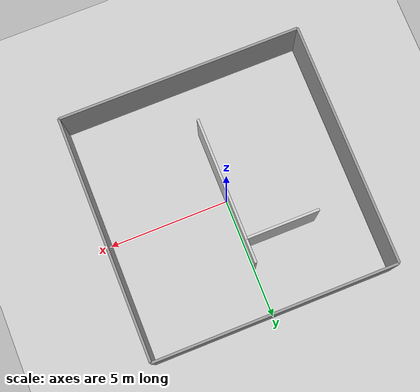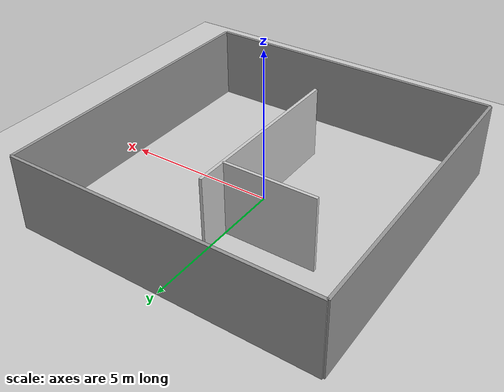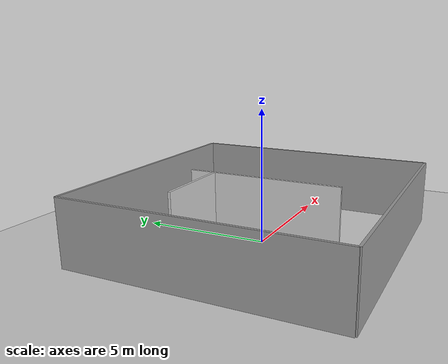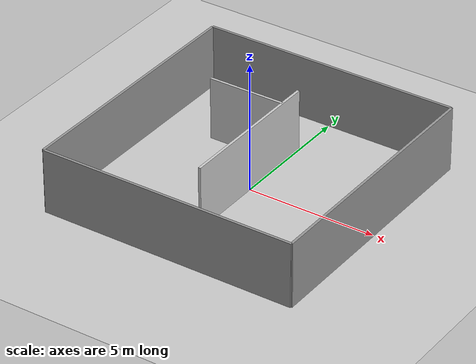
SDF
<?xml version="1.0" ?>
<sdf version="1.6">
  <world name="apartment">

    <!-- Sun & ground plane -->
    <include>
      <uri>model://sun</uri>
    </include>
    <include>
      <uri>model://ground_plane</uri>
    </include>

    <physics type="ode">
      <real_time_update_rate>1000.0</real_time_update_rate>
      <max_step_size>0.001</max_step_size>
    </physics>

    <!-- Floor -->
    <model name="apartment_floor">
      <static>true</static>
      <link name="floor">
        <collision name="floor_collision">
          <geometry>
            <box>
              <size>10 10 0.1</size>
            </box>
          </geometry>
          <surface>
            <contact>
              <collide_bitmask>0x01</collide_bitmask>
            </contact>
          </surface>
        </collision>
        <visual name="floor_visual">
          <geometry>
            <box>
              <size>10 10 0.1</size>
            </box>
          </geometry>
          <material>
            <ambient>0.8 0.8 0.8 1</ambient>
            <diffuse>0.8 0.8 0.8 1</diffuse>
          </material>
        </visual>
      </link>
    </model>

    <!-- Example walls for apartment -->
    <!-- Outer walls -->
    <model name="outer_wall_north">
      <static>true</static>
      <link name="link">
        <collision name="collision">
          <geometry><box><size>10 0.1 2.5</size></box></geometry>
        </collision>
        <visual name="visual">
          <geometry><box><size>10 0.1 2.5</size></box></geometry>
          <material><diffuse>0.6 0.6 0.6 1</diffuse></material>
        </visual>
        <pose>0 5 1.25 0 0 0</pose>
      </link>
    </model>

    <model name="outer_wall_south">
      <static>true</static>
      <link name="link">
        <collision name="collision">
          <geometry><box><size>10 0.1 2.5</size></box></geometry>
        </collision>
        <visual name="visual">
          <geometry><box><size>10 0.1 2.5</size></box></geometry>
          <material><diffuse>0.6 0.6 0.6 1</diffuse></material>
        </visual>
        <pose>0 -5 1.25 0 0 0</pose>
      </link>
    </model>

    <model name="outer_wall_east">
      <static>true</static>
      <link name="link">
        <collision name="collision">
          <geometry><box><size>0.1 10 2.5</size></box></geometry>
        </collision>
        <visual name="visual">
          <geometry><box><size>0.1 10 2.5</size></box></geometry>
          <material><diffuse>0.6 0.6 0.6 1</diffuse></material>
        </visual>
        <pose>5 0 1.25 0 0 0</pose>
      </link>
    </model>

    <model name="outer_wall_west">
      <static>true</static>
      <link name="link">
        <collision name="collision">
          <geometry><box><size>0.1 10 2.5</size></box></geometry>
        </collision>
        <visual name="visual">
          <geometry><box><size>0.1 10 2.5</size></box></geometry>
          <material><diffuse>0.6 0.6 0.6 1</diffuse></material>
        </visual>
        <pose>-5 0 1.25 0 0 0</pose>
      </link>
    </model>

    <!-- Inner walls (example rooms) -->
    <model name="wall1">
      <static>true</static>
      <link name="link">
        <collision name="collision">
          <geometry><box><size>0.1 6 2.5</size></box></geometry>
        </collision>
        <visual name="visual">
          <geometry><box><size>0.1 6 2.5</size></box></geometry>
          <material><diffuse>0.8 0.8 0.8 1</diffuse></material>
        </visual>
        <pose>0 0 1.25 0 0 0</pose>
      </link>
    </model>

    <model name="wall2">
      <static>true</static>
      <link name="link">
        <collision name="collision">
          <geometry><box><size>3 0.1 2.5</size></box></geometry>
        </collision>
        <visual name="visual">
          <geometry><box><size>3 0.1 2.5</size></box></geometry>
          <material><diffuse>0.8 0.8 0.8 1</diffuse></material>
        </visual>
        <pose>-1.5 2 1.25 0 0 0</pose>
      </link>
    </model>

    <!-- Add lights -->
    <light type="point" name="apartment_light">
      <pose>0 0 3 0 0 0</pose>
      <diffuse>1 1 1 1</diffuse>
      <specular>0.5 0.5 0.5 1</specular>
      <attenuation>
        <range>20</range>
        <constant>0.9</constant>
        <linear>0.01</linear>
        <quadratic>0.001</quadratic>
      </attenuation>
    </light>

  </world>
</sdf>
